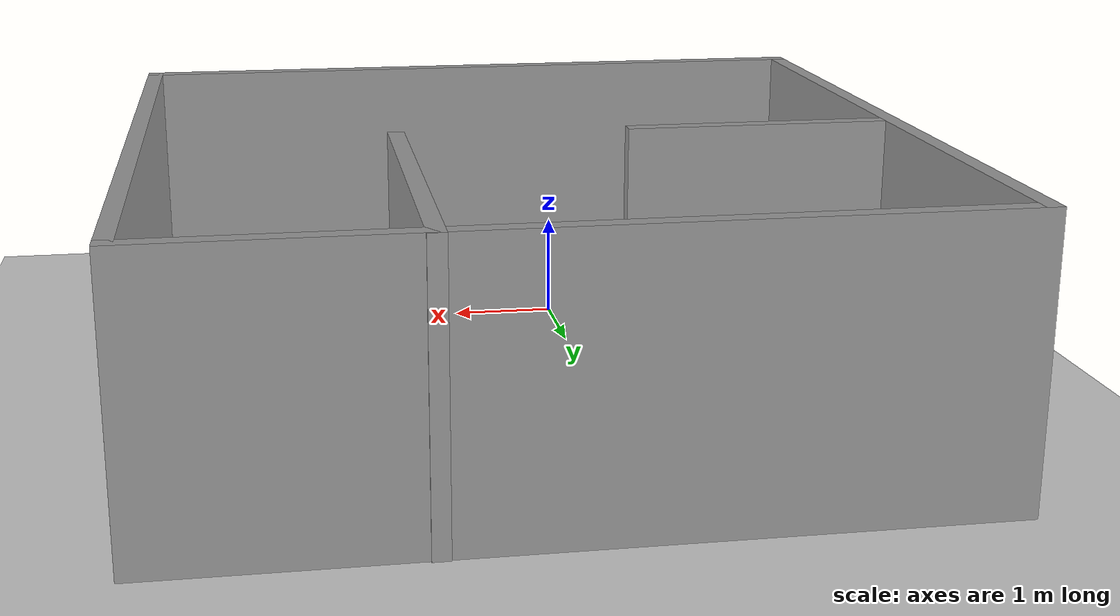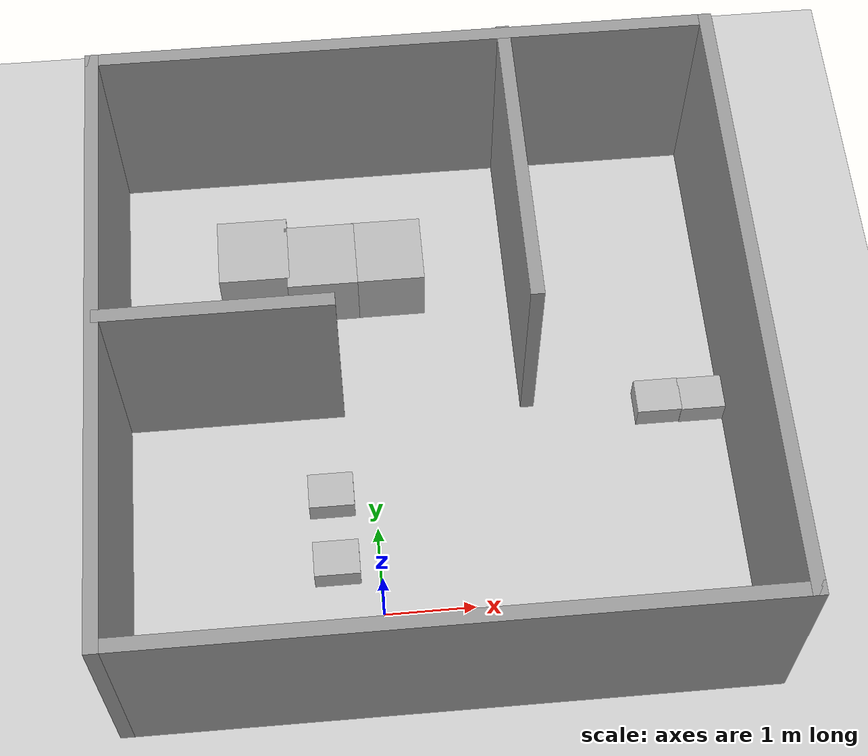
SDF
<sdf version="1.7">
 <world name="default">
  <light name="sun" type="directional">
   <pose>0 0 10 0 -0 0</pose>
   <diffuse>0.8 0.8 0.8 1</diffuse>
   <specular>0.2 0.2 0.2 1</specular>
   <attenuation>
    <range>1000</range>
    <constant>0.9</constant>
    <linear>0.01</linear>
    <quadratic>0.001</quadratic>
   </attenuation>
   <direction>-0.5 0.1 -0.9</direction>
   <spot><inner_angle>0</inner_angle><outer_angle>0</outer_angle><falloff>0</falloff></spot>
  </light>
  <model name="ground_plane">
   <static>1</static>
   <link name="link">
    <collision name="collision">
     <geometry><plane><normal>0 0 1</normal><size>100 100</size></plane></geometry>
     <surface>
      <contact><collide_bitmask>65535</collide_bitmask></contact>
      <friction><ode><mu>100</mu><mu2>50</mu2></ode></friction>
     </surface>
    </collision>
    <visual name="visual">
     <cast_shadows>0</cast_shadows>
     <geometry><plane><normal>0 0 1</normal><size>100 100</size></plane></geometry>
     <material>
      <script><uri>file://media/materials/scripts/gazebo.material</uri><name>Gazebo/Grey</name></script>
     </material>
    </visual>
   </link>
  </model>
  <gravity>0 0 -9.8</gravity>
  <magnetic_field>6e-06 2.3e-05 -4.2e-05</magnetic_field>
  <atmosphere type="adiabatic"/>
  <physics type="ode">
   <max_step_size>0.001</max_step_size>
   <real_time_factor>5</real_time_factor>
   <real_time_update_rate>5000</real_time_update_rate>
  </physics>
  <scene><ambient>0.4 0.4 0.4 1</ambient><background>0.7 0.7 0.7 1</background><shadows>1</shadows></scene>
  <spherical_coordinates>
   <surface_model>EARTH_WGS84</surface_model>
   <latitude_deg>0</latitude_deg>
   <longitude_deg>0</longitude_deg>
   <elevation>0</elevation>
   <heading_deg>0</heading_deg>
  </spherical_coordinates>
  <model name="Untitled">
   <pose>0.655 2.373 0 0 -0 0</pose>
   <link name="Wall_0">
    <collision name="Wall_0_Collision">
     <geometry><box><size>7 0.15 2.5</size></box></geometry>
     <pose>0 0 1.25 0 -0 0</pose>
    </collision>
    <visual name="Wall_0_Visual">
     <pose>0 0 1.25 0 -0 0</pose>
     <geometry><box><size>7 0.15 2.5</size></box></geometry>
     <material>
      <script><uri>file://media/materials/scripts/gazebo.material</uri><name>Gazebo/Grey</name></script>
      <ambient>1 1 1 1</ambient>
     </material>
     <meta><layer>0</layer></meta>
    </visual>
    <pose>-3.425 -0.008003 0 0 -0 1.5708</pose>
   </link>
   <link name="Wall_1">
    <collision name="Wall_1_Collision">
     <geometry><box><size>7 0.15 2.5</size></box></geometry>
     <pose>0 0 1.25 0 -0 0</pose>
    </collision>
    <visual name="Wall_1_Visual">
     <pose>0 0 1.25 0 -0 0</pose>
     <geometry><box><size>7 0.15 2.5</size></box></geometry>
     <material>
      <script><uri>file://media/materials/scripts/gazebo.material</uri><name>Gazebo/Grey</name></script>
      <ambient>1 1 1 1</ambient>
     </material>
     <meta><layer>0</layer></meta>
    </visual>
    <pose>0 3.417 0 0 -0 0</pose>
   </link>
   <link name="Wall_2">
    <collision name="Wall_2_Collision">
     <geometry><box><size>7 0.15 2.5</size></box></geometry>
     <pose>0 0 1.25 0 -0 0</pose>
    </collision>
    <visual name="Wall_2_Visual">
     <pose>0 0 1.25 0 -0 0</pose>
     <geometry><box><size>7 0.15 2.5</size></box></geometry>
     <material>
      <script><uri>file://media/materials/scripts/gazebo.material</uri><name>Gazebo/Grey</name></script>
      <ambient>1 1 1 1</ambient>
     </material>
     <meta><layer>0</layer></meta>
    </visual>
    <pose>3.425 -0.008003 0 0 -0 -1.5708</pose>
   </link>
   <link name="Wall_3">
    <collision name="Wall_3_Collision">
     <geometry><box><size>7 0.15 2.5</size></box></geometry>
     <pose>0 0 1.25 0 -0 0</pose>
    </collision>
    <visual name="Wall_3_Visual">
     <pose>0 0 1.25 0 -0 0</pose>
     <geometry><box><size>7 0.15 2.5</size></box></geometry>
     <material>
      <script><uri>file://media/materials/scripts/gazebo.material</uri><name>Gazebo/Grey</name></script>
      <ambient>1 1 1 1</ambient>
     </material>
     <meta><layer>0</layer></meta>
    </visual>
    <pose>0 -3.433 0 0 -0 3.14159</pose>
   </link>
   <link name="Wall_5">
    <collision name="Wall_5_Collision">
     <geometry><box><size>2.5 0.15 2.5</size></box></geometry>
     <pose>0 0 1.25 0 -0 0</pose>
    </collision>
    <visual name="Wall_5_Visual">
     <pose>0 0 1.25 0 -0 0</pose>
     <geometry><box><size>2.5 0.15 2.5</size></box></geometry>
     <material>
      <script><uri>file://media/materials/scripts/gazebo.material</uri><name>Gazebo/Grey</name></script>
      <ambient>1 1 1 1</ambient>
     </material>
     <meta><layer>0</layer></meta>
    </visual>
    <pose>-2.18182 0.130452 0 0 -0 0</pose>
   </link>
   <link name="Wall_7">
    <collision name="Wall_7_Collision">
     <geometry><box><size>3.5 0.15 2.5</size></box></geometry>
     <pose>0 0 1.25 0 -0 0</pose>
    </collision>
    <visual name="Wall_7_Visual">
     <pose>0 0 1.25 0 -0 0</pose>
     <geometry><box><size>3.5 0.15 2.5</size></box></geometry>
     <material>
      <script><uri>file://media/materials/scripts/gazebo.material</uri><name>Gazebo/Grey</name></script>
      <ambient>1 1 1 1</ambient>
     </material>
     <meta><layer>0</layer></meta>
    </visual>
    <pose>1.15023 1.758 0 0 -0 -1.5708</pose>
   </link>
   <static>1</static>
  </model>
  <model name="cardboard_box_1">
   <pose>3.75543 2.24219 0.15 0 -0 0</pose>
   <link name="link">
    <inertial>
     <mass>2</mass>
     <inertia>
      <ixx>0.0416667</ixx>
      <ixy>0</ixy>
      <ixz>0</ixz>
      <iyy>0.0566667</iyy>
      <iyz>0</iyz>
      <izz>0.0683333</izz>
     </inertia>
    </inertial>
    <collision name="collision">
     <geometry><box><size>0.5 0.4 0.3</size></box></geometry>
     <surface>
      <friction><ode><mu>1</mu><mu2>1</mu2></ode></friction>
      <contact><ode><kp>1e+07</kp><kd>1</kd><min_depth>0.001</min_depth><max_vel>0.1</max_vel></ode></contact>
     </surface>
    </collision>
    <visual name="visual">
     <pose>0 0 -0.15 0 -0 0</pose>
     <geometry>
      <mesh><uri>model://cardboard_box/meshes/cardboard_box.dae</uri><scale>1.25932 1.00745 0.755591</scale></mesh>
     </geometry>
    </visual>
   </link>
  </model>
  <model name="cardboard_box_2">
   <pose>3.26448 2.24958 0.15 0 -0 0</pose>
   <link name="link">
    <inertial>
     <mass>2</mass>
     <inertia>
      <ixx>0.0416667</ixx>
      <ixy>0</ixy>
      <ixz>0</ixz>
      <iyy>0.0566667</iyy>
      <iyz>0</iyz>
      <izz>0.0683333</izz>
     </inertia>
    </inertial>
    <collision name="collision">
     <geometry><box><size>0.5 0.4 0.3</size></box></geometry>
     <surface>
      <friction><ode><mu>1</mu><mu2>1</mu2></ode></friction>
      <contact><ode><kp>1e+07</kp><kd>1</kd><min_depth>0.001</min_depth><max_vel>0.1</max_vel></ode></contact>
     </surface>
    </collision>
    <visual name="visual">
     <pose>0 0 -0.15 0 -0 0</pose>
     <geometry>
      <mesh><uri>model://cardboard_box/meshes/cardboard_box.dae</uri><scale>1.25932 1.00745 0.755591</scale></mesh>
     </geometry>
    </visual>
   </link>
  </model>
  <model name="number9">
   <pose>-1.18707 4.24424 0.4 0 -0 0</pose>
   <static>1</static>
   <link name="link">
    <visual name="visual">
     <geometry><mesh><uri>model://number1/meshes/number.dae</uri></mesh></geometry>
     <material>
      <script>
       <uri>model://number9/materials/scripts</uri>
       <uri>model://number9/materials/textures</uri>
       <name>Number/Nine</name>
      </script>
     </material>
    </visual>
   </link>
  </model>
  <model name="number9_0">
   <pose>-0.415608 4.11903 0.4 0 -0 0</pose>
   <static>1</static>
   <link name="link">
    <visual name="visual">
     <geometry><mesh><uri>model://number1/meshes/number.dae</uri></mesh></geometry>
     <material>
      <script>
       <uri>model://number9/materials/scripts</uri>
       <uri>model://number9/materials/textures</uri>
       <name>Number/Nine</name>
      </script>
     </material>
    </visual>
   </link>
  </model>
  <model name="number9_1">
   <pose>0.346389 4.12164 0.4 0 -0 0</pose>
   <static>1</static>
   <link name="link">
    <visual name="visual">
     <geometry><mesh><uri>model://number1/meshes/number.dae</uri></mesh></geometry>
     <material>
      <script>
       <uri>model://number9/materials/scripts</uri>
       <uri>model://number9/materials/textures</uri>
       <name>Number/Nine</name>
      </script>
     </material>
    </visual>
   </link>
  </model>
  <model name="cardboard_box">
   <pose>-0.485952 1.38645 0.15 0 -0 0</pose>
   <link name="link">
    <inertial>
     <mass>2</mass>
     <inertia>
      <ixx>0.0416667</ixx>
      <ixy>0</ixy>
      <ixz>0</ixz>
      <iyy>0.0566667</iyy>
      <iyz>0</iyz>
      <izz>0.0683333</izz>
     </inertia>
    </inertial>
    <collision name="collision">
     <geometry><box><size>0.5 0.4 0.3</size></box></geometry>
     <surface>
      <friction><ode><mu>1</mu><mu2>1</mu2></ode></friction>
      <contact><ode><kp>1e+07</kp><kd>1</kd><min_depth>0.001</min_depth><max_vel>0.1</max_vel></ode></contact>
     </surface>
    </collision>
    <visual name="visual">
     <pose>0 0 -0.15 0 -0 0</pose>
     <geometry>
      <mesh><uri>model://cardboard_box/meshes/cardboard_box.dae</uri><scale>1.25932 1.00745 0.755591</scale></mesh>
     </geometry>
    </visual>
   </link>
  </model>
  <model name="cardboard_box_0">
   <pose>-0.475547 0.577447 0.15 0 -0 0</pose>
   <link name="link">
    <inertial>
     <mass>2</mass>
     <inertia>
      <ixx>0.0416667</ixx>
      <ixy>0</ixy>
      <ixz>0</ixz>
      <iyy>0.0566667</iyy>
      <iyz>0</iyz>
      <izz>0.0683333</izz>
     </inertia>
    </inertial>
    <collision name="collision">
     <geometry><box><size>0.5 0.4 0.3</size></box></geometry>
     <surface>
      <friction><ode><mu>1</mu><mu2>1</mu2></ode></friction>
      <contact><ode><kp>1e+07</kp><kd>1</kd><min_depth>0.001</min_depth><max_vel>0.1</max_vel></ode></contact>
     </surface>
    </collision>
    <visual name="visual">
     <pose>0 0 -0.15 0 -0 0</pose>
     <geometry>
      <mesh><uri>model://cardboard_box/meshes/cardboard_box.dae</uri><scale>1.25932 1.00745 0.755591</scale></mesh>
     </geometry>
    </visual>
   </link>
  </model>
 </world>
</sdf>
